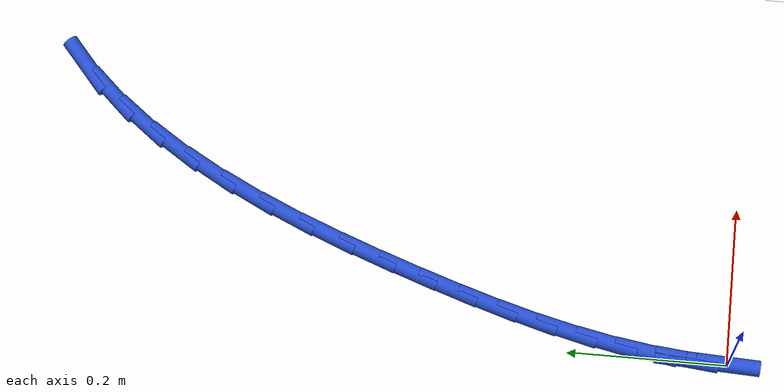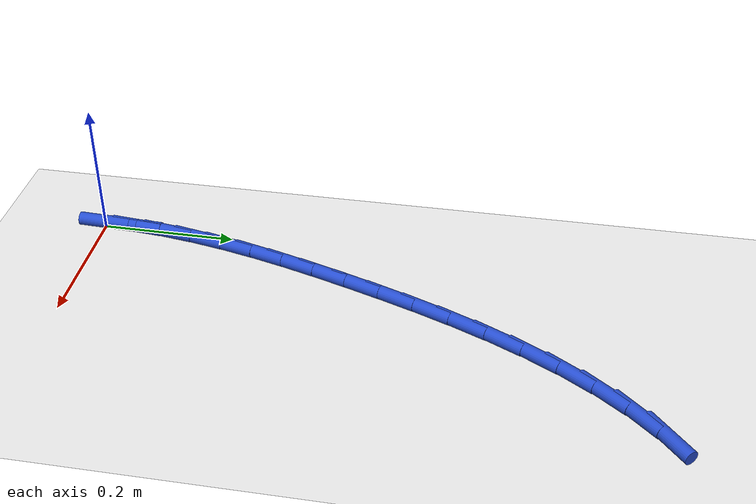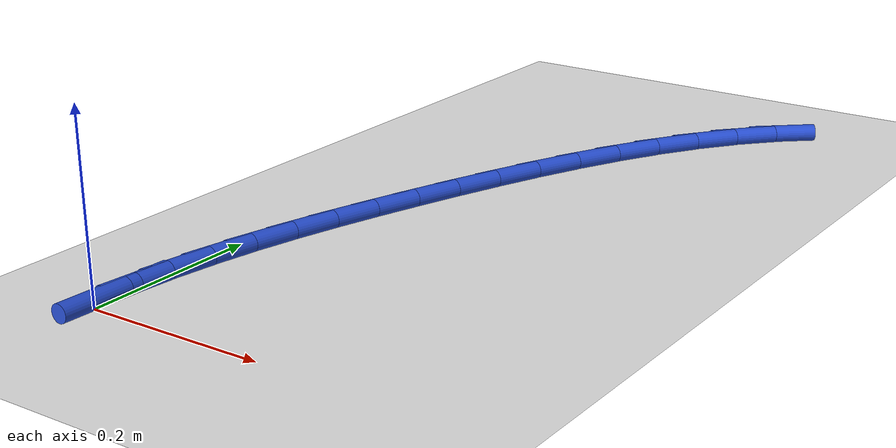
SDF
<sdf version="1.6">
 <world name="default">
  <model name="ground_plane">
   <static>1</static>
   <link name="link">
    <collision name="collision">
     <geometry><plane><normal>0 0 1</normal><size>100 100</size></plane></geometry>
     <surface><friction><ode><mu>100</mu><mu2>50</mu2></ode></friction></surface>
    </collision>
    <visual name="visual">
     <cast_shadows>0</cast_shadows>
     <geometry><plane><normal>0 0 1</normal><size>100 100</size></plane></geometry>
     <material>
      <script><uri>file://media/materials/scripts/gazebo.material</uri><name>Gazebo/WhiteGlow</name></script>
     </material>
    </visual>
   </link>
  </model>
  <model name="line">
   <link name="link_1">
    <pose>0.0024110733575314065 0.051245375440386036 0.01 0 1.57 1.466990602623562</pose>
    <collision name="collision">
     <geometry><cylinder><radius>0.01</radius><length>0.08</length></cylinder></geometry>
    </collision>
    <visual name="visual">
     <material>
      <script><name>Gazebo/Blue</name><uri>file://media/materials/scripts/gazebo.material</uri></script>
     </material>
     <geometry><cylinder><radius>0.01</radius><length>0.08</length></cylinder></geometry>
    </visual>
   </link>
   <link name="link_2">
    <pose>0.00768037519130564 0.10182410398176842 0.01 0 1.57 1.4148712306477755</pose>
    <collision name="collision">
     <geometry><cylinder><radius>0.01</radius><length>0.08</length></cylinder></geometry>
    </collision>
    <visual name="visual">
     <material>
      <script><name>Gazebo/Blue</name><uri>file://media/materials/scripts/gazebo.material</uri></script>
     </material>
     <geometry><cylinder><radius>0.01</radius><length>0.08</length></cylinder></geometry>
    </visual>
   </link>
   <link name="link_3">
    <pose>0.015563070977900464 0.15196811003572114 0.01 0 1.57 1.3683420249566505</pose>
    <collision name="collision">
     <geometry><cylinder><radius>0.01</radius><length>0.08</length></cylinder></geometry>
    </collision>
    <visual name="visual">
     <material>
      <script><name>Gazebo/Blue</name><uri>file://media/materials/scripts/gazebo.material</uri></script>
     </material>
     <geometry><cylinder><radius>0.01</radius><length>0.08</length></cylinder></geometry>
    </visual>
   </link>
   <link name="link_4">
    <pose>0.025814326193893615 0.2019093180138182 0.01 0 1.57 1.3280339136320554</pose>
    <collision name="collision">
     <geometry><cylinder><radius>0.01</radius><length>0.08</length></cylinder></geometry>
    </collision>
    <visual name="visual">
     <material>
      <script><name>Gazebo/Blue</name><uri>file://media/materials/scripts/gazebo.material</uri></script>
     </material>
     <geometry><cylinder><radius>0.01</radius><length>0.08</length></cylinder></geometry>
    </visual>
   </link>
   <link name="link_5">
    <pose>0.038189306315862856 0.25187965232763354 0.01 0 1.57 1.2943004729907877</pose>
    <collision name="collision">
     <geometry><cylinder><radius>0.01</radius><length>0.08</length></cylinder></geometry>
    </collision>
    <visual name="visual">
     <material>
      <script><name>Gazebo/Blue</name><uri>file://media/materials/scripts/gazebo.material</uri></script>
     </material>
     <geometry><cylinder><radius>0.01</radius><length>0.08</length></cylinder></geometry>
    </visual>
   </link>
   <link name="link_6">
    <pose>0.052443176820385955 0.3021110373887412 0.01 0 1.57 1.2672548912655726</pose>
    <collision name="collision">
     <geometry><cylinder><radius>0.01</radius><length>0.08</length></cylinder></geometry>
    </collision>
    <visual name="visual">
     <material>
      <script><name>Gazebo/Blue</name><uri>file://media/materials/scripts/gazebo.material</uri></script>
     </material>
     <geometry><cylinder><radius>0.01</radius><length>0.08</length></cylinder></geometry>
    </visual>
   </link>
   <link name="link_7">
    <pose>0.06833110318404062 0.3528353976087151 0.01 0 1.57 1.246818924104881</pose>
    <collision name="collision">
     <geometry><cylinder><radius>0.01</radius><length>0.08</length></cylinder></geometry>
    </collision>
    <visual name="visual">
     <material>
      <script><name>Gazebo/Blue</name><uri>file://media/materials/scripts/gazebo.material</uri></script>
     </material>
     <geometry><cylinder><radius>0.01</radius><length>0.08</length></cylinder></geometry>
    </visual>
   </link>
   <link name="link_8">
    <pose>0.08560825088340465 0.4042846573991291 0.01 0 1.57 1.2309105991806633</pose>
    <collision name="collision">
     <geometry><cylinder><radius>0.01</radius><length>0.08</length></cylinder></geometry>
    </collision>
    <visual name="visual">
     <material>
      <script><name>Gazebo/Blue</name><uri>file://media/materials/scripts/gazebo.material</uri></script>
     </material>
     <geometry><cylinder><radius>0.01</radius><length>0.08</length></cylinder></geometry>
    </visual>
   </link>
   <link name="link_9">
    <pose>0.10409419483523223 0.45656268177239095 0.01 0 1.57 1.2107166617826481</pose>
    <collision name="collision">
     <geometry><cylinder><radius>0.01</radius><length>0.08</length></cylinder></geometry>
    </collision>
    <visual name="visual">
     <material>
      <script><name>Gazebo/Blue</name><uri>file://media/materials/scripts/gazebo.material</uri></script>
     </material>
     <geometry><cylinder><radius>0.01</radius><length>0.08</length></cylinder></geometry>
    </visual>
   </link>
   <link name="link_10">
    <pose>0.12390542286041203 0.5091830109685765 0.01 0 1.57 1.1834522085738843</pose>
    <collision name="collision">
     <geometry><cylinder><radius>0.01</radius><length>0.08</length></cylinder></geometry>
    </collision>
    <visual name="visual">
     <material>
      <script><name>Gazebo/Blue</name><uri>file://media/materials/scripts/gazebo.material</uri></script>
     </material>
     <geometry><cylinder><radius>0.01</radius><length>0.08</length></cylinder></geometry>
    </visual>
   </link>
   <link name="link_11">
    <pose>0.14524392196312547 0.5614891950211758 0.01 0 1.57 1.1484810443017155</pose>
    <collision name="collision">
     <geometry><cylinder><radius>0.01</radius><length>0.08</length></cylinder></geometry>
    </collision>
    <visual name="visual">
     <material>
      <script><name>Gazebo/Blue</name><uri>file://media/materials/scripts/gazebo.material</uri></script>
     </material>
     <geometry><cylinder><radius>0.01</radius><length>0.08</length></cylinder></geometry>
    </visual>
   </link>
   <link name="link_12">
    <pose>0.1683116869953638 0.6128247683605962 0.01 0 1.57 1.1048214126106137</pose>
    <collision name="collision">
     <geometry><cylinder><radius>0.01</radius><length>0.08</length></cylinder></geometry>
    </collision>
    <visual name="visual">
     <material>
      <script><name>Gazebo/Blue</name><uri>file://media/materials/scripts/gazebo.material</uri></script>
     </material>
     <geometry><cylinder><radius>0.01</radius><length>0.08</length></cylinder></geometry>
    </visual>
   </link>
   <link name="link_13">
    <pose>0.19331071280911832 0.662533265417245 0.01 0 1.57 1.0511368247239044</pose>
    <collision name="collision">
     <geometry><cylinder><radius>0.01</radius><length>0.08</length></cylinder></geometry>
    </collision>
    <visual name="visual">
     <material>
      <script><name>Gazebo/Blue</name><uri>file://media/materials/scripts/gazebo.material</uri></script>
     </material>
     <geometry><cylinder><radius>0.01</radius><length>0.08</length></cylinder></geometry>
    </visual>
   </link>
   <link name="link_14">
    <pose>0.22044299425638023 0.7099582206215298 0.01 0 1.57 0.9857424128663043</pose>
    <collision name="collision">
     <geometry><cylinder><radius>0.01</radius><length>0.08</length></cylinder></geometry>
    </collision>
    <visual name="visual">
     <material>
      <script><name>Gazebo/Blue</name><uri>file://media/materials/scripts/gazebo.material</uri></script>
     </material>
     <geometry><cylinder><radius>0.01</radius><length>0.08</length></cylinder></geometry>
    </visual>
   </link>
   <link name="link_15">
    <pose>0.24991052618914075 0.7544431684038578 0.01 0 1.57 0.9066727954461855</pose>
    <collision name="collision">
     <geometry><cylinder><radius>0.01</radius><length>0.08</length></cylinder></geometry>
    </collision>
    <visual name="visual">
     <material>
      <script><name>Gazebo/Blue</name><uri>file://media/materials/scripts/gazebo.material</uri></script>
     </material>
     <geometry><cylinder><radius>0.01</radius><length>0.08</length></cylinder></geometry>
    </visual>
   </link>
   <link name="link_16">
    <pose>0.28191530345939125 0.7953316431946366 0.01 0 1.57 0.811891411169998</pose>
    <collision name="collision">
     <geometry><cylinder><radius>0.01</radius><length>0.08</length></cylinder></geometry>
    </collision>
    <visual name="visual">
     <material>
      <script><name>Gazebo/Blue</name><uri>file://media/materials/scripts/gazebo.material</uri></script>
     </material>
     <geometry><cylinder><radius>0.01</radius><length>0.08</length></cylinder></geometry>
    </visual>
   </link>
   <link name="link_17">
    <pose>0.31665932091912274 0.8319671794242733 0.01 0 1.57 0.6997559581888386</pose>
    <collision name="collision">
     <geometry><cylinder><radius>0.01</radius><length>0.08</length></cylinder></geometry>
    </collision>
    <visual name="visual">
     <material>
      <script><name>Gazebo/Blue</name><uri>file://media/materials/scripts/gazebo.material</uri></script>
     </material>
     <geometry><cylinder><radius>0.01</radius><length>0.08</length></cylinder></geometry>
    </visual>
   </link>
   <link name="link_150">
    <pose>-1.9081958235744878e-17 2.914335439641036e-16 0.01 0 1.57 1.5226290487715892</pose>
    <collision name="collision">
     <geometry><cylinder><radius>0.01</radius><length>0.08</length></cylinder></geometry>
    </collision>
    <visual name="visual">
     <material>
      <script><name>Gazebo/Blue</name><uri>file://media/materials/scripts/gazebo.material</uri></script>
     </material>
     <geometry><cylinder><radius>0.01</radius><length>0.08</length></cylinder></geometry>
    </visual>
   </link>
   <link name="link_151">
    <pose>0.0024648783237981517 0.05113371330460728 0.01 0 1.57 1.5226290487715897</pose>
    <collision name="collision">
     <geometry><cylinder><radius>0.01</radius><length>0.08</length></cylinder></geometry>
    </collision>
    <visual name="visual">
     <material>
      <script><name>Gazebo/Blue</name><uri>file://media/materials/scripts/gazebo.material</uri></script>
     </material>
     <geometry><cylinder><radius>0.01</radius><length>0.08</length></cylinder></geometry>
    </visual>
   </link>
  </model>
 </world>
</sdf>
